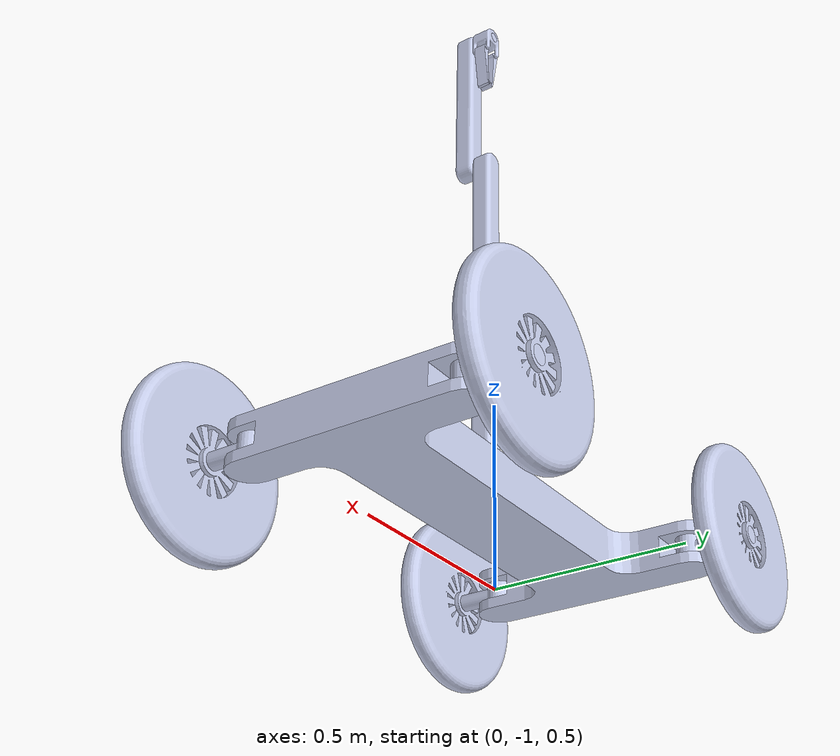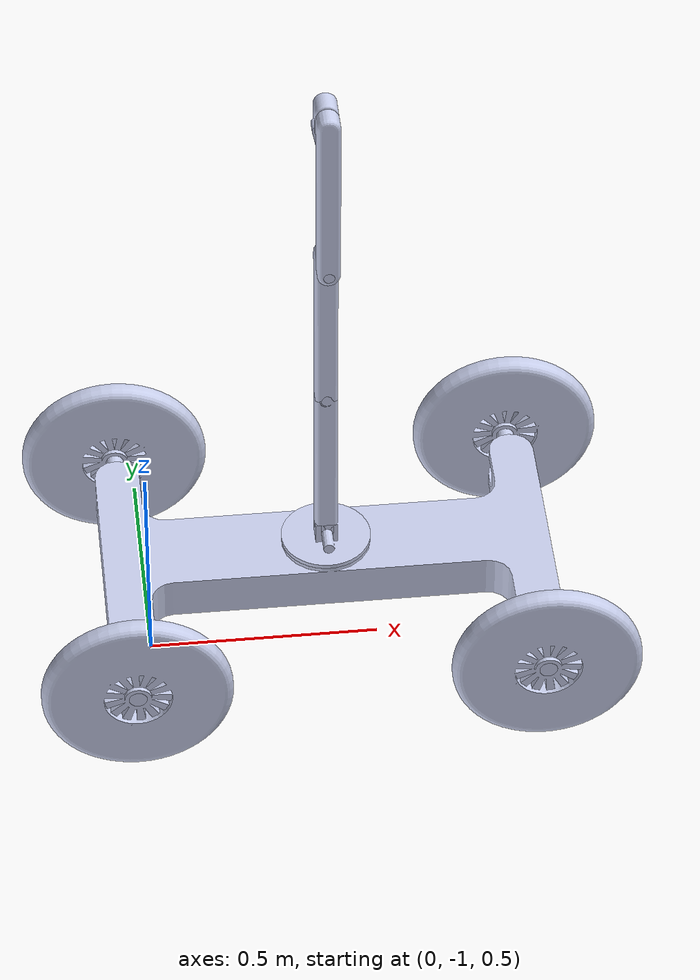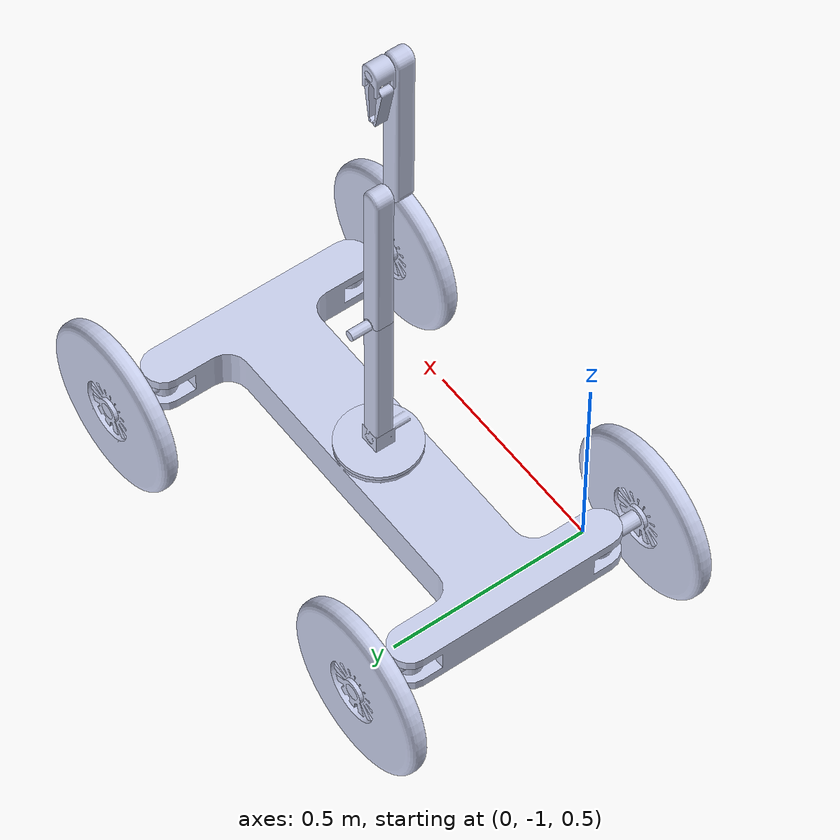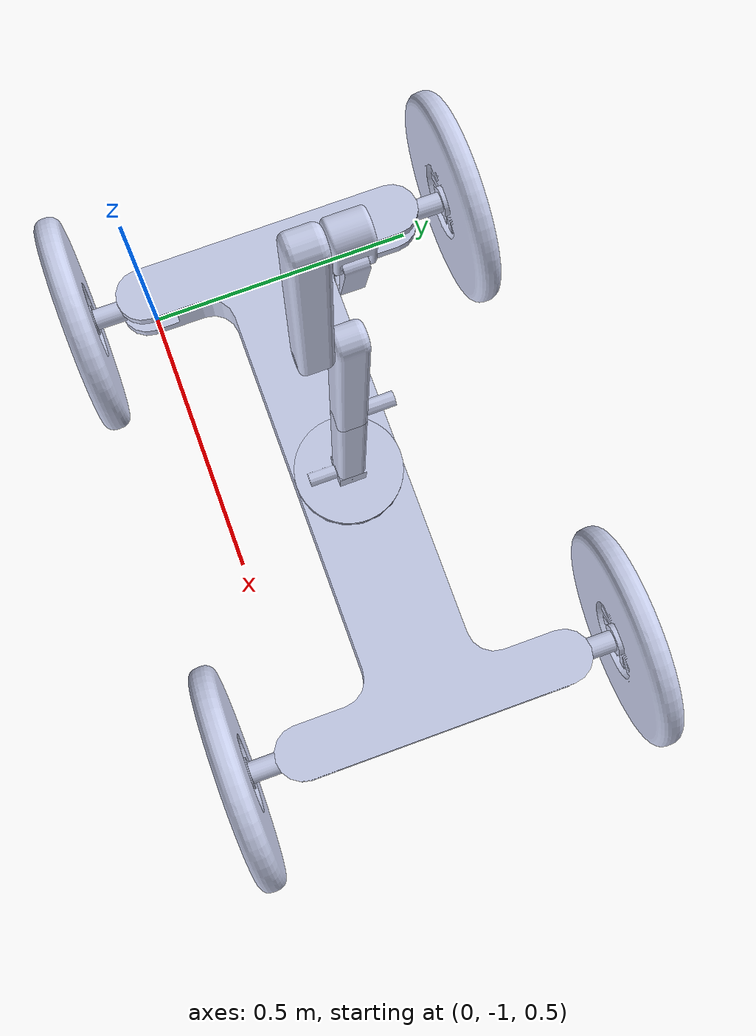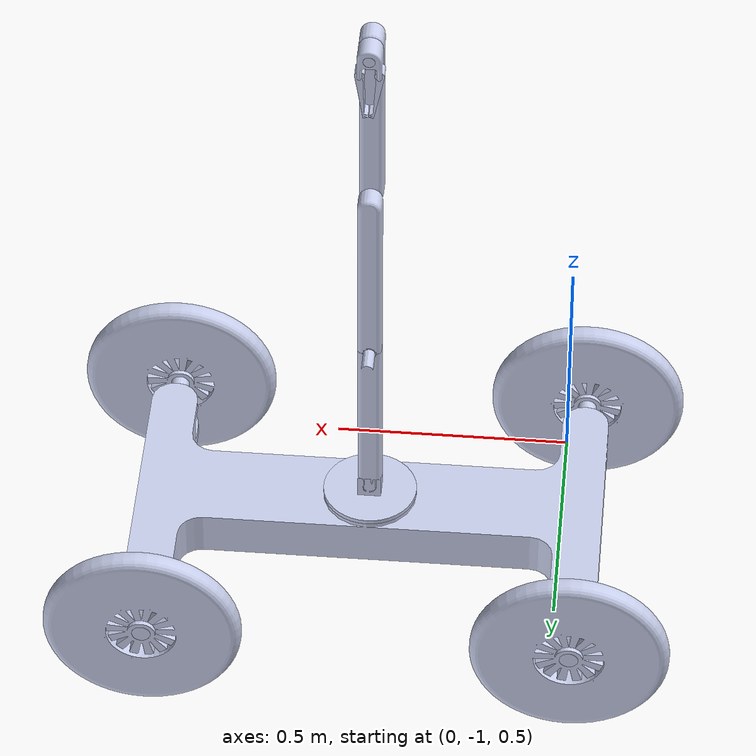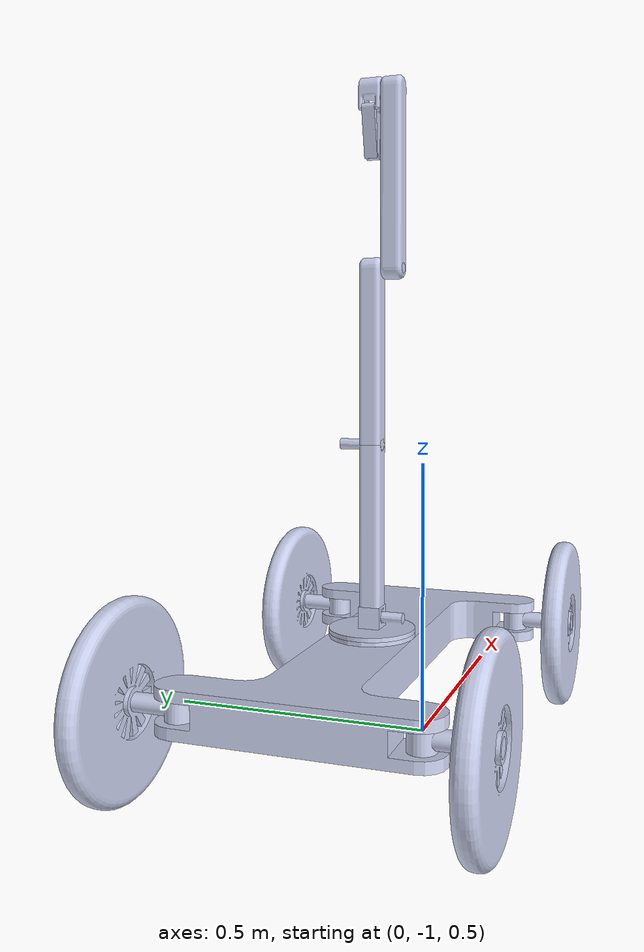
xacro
<?xml version="1.0" ?>
<robot
  name="car" xmlns:xacro="http://ros.org/wiki/xacro">
  <link name="dummy_link"></link>
  <link
    name="base_link">
    <inertial>
      <origin
        xyz="0.410739320383848 -0.760919245062769 0.503217025483666"
        rpy="0 0 0" />
      <mass
        value="26.5654866776462" />
      <inertia
        ixx="0.311711032402344"
        ixy="6.4374503991327E-17"
        ixz="-1.18915697835174E-17"
        iyy="2.95081279665845"
        iyz="-2.01443248286315E-18"
        izz="3.21497060567305" />
    </inertial>
    <visual>
      <origin
        xyz="0 0 0"
        rpy="0 0 0" />
      <geometry>
        <mesh
          filename="package://car/meshes/base_link.STL" />
      </geometry>
      <material
        name="">
        <color
          rgba="0.792156862745098 0.819607843137255 0.933333333333333 1" />
      </material>
    </visual>
    <collision>
      <origin
        xyz="0 0 0"
        rpy="0 0 0" />
      <geometry>
        <mesh
          filename="package://car/meshes/base_link.STL" />
      </geometry>
    </collision>
  </link>
    <joint name="dummy_joint" type="fixed">
    <origin rpy="0 0 0" xyz="0 0 0" />
    <parent link="dummy_link"/>
    <child link="base_link"/>
  </joint>
  <link
    name="front_left_axle_link">
    <inertial>
      <origin
        xyz="0.0605635681645035 0.0250000379534826 1.01927197793117E-08"
        rpy="0 0 0" />
      <mass
        value="0.225126111623142" />
      <inertia
        ixx="6.99511377566151E-05"
        ixy="-1.9388751550408E-10"
        ixz="-2.5215377280019E-10"
        iyy="0.000642301895072359"
        iyz="-2.1138743748584E-10"
        izz="0.000632842018939609" />
    </inertial>
    <visual>
      <origin
        xyz="0 0 0"
        rpy="0 0 0" />
      <geometry>
        <mesh
          filename="package://car/meshes/front_left_axle_link.STL" />
      </geometry>
      <material
        name="">
        <color
          rgba="0.792156862745098 0.819607843137255 0.933333333333333 1" />
      </material>
    </visual>
    <collision>
      <origin
        xyz="0 0 0"
        rpy="0 0 0" />
      <geometry>
        <mesh
          filename="package://car/meshes/front_left_axle_link.STL" />
      </geometry>
    </collision>
  </link>
  <joint
    name="front_left_axle_joint"
    type="revolute">
    <origin
      xyz="0.860739320383848 -0.510919245062769 0.47756660413794"
      rpy="1.5707963267949 0 1.5707963267949" />
    <parent
      link="base_link" />
    <child
      link="front_left_axle_link" />
    <axis
      xyz="0 1 0" />
    <limit
      lower="-0.61"
      upper="0.61"
      effort="100"
      velocity="100" />
  </joint>
  <link
    name="front_left_wheel_link">
    <inertial>
      <origin
        xyz="4.44089209850063E-16 -2.4980018054066E-16 -0.025"
        rpy="0 0 0" />
      <mass
        value="6.21012679962811" />
      <inertia
        ixx="0.0721461700805678"
        ixy="5.20417042793042E-18"
        ixz="4.71601633982946E-19"
        iyy="0.0721461700805678"
        iyz="7.87347296425907E-21"
        izz="0.141888005291817" />
    </inertial>
    <visual>
      <origin
        xyz="0 0 0"
        rpy="0 0 0" />
      <geometry>
        <mesh
          filename="package://car/meshes/front_left_wheel_link.STL" />
      </geometry>
      <material
        name="">
        <color
          rgba="0.792156862745098 0.819607843137255 0.933333333333333 1" />
      </material>
    </visual>
    <collision>
      <origin
        xyz="0 0 0"
        rpy="0 0 0" />
      <geometry>
        <mesh
          filename="package://car/meshes/front_left_wheel_link.STL" />
      </geometry>
    </collision>
  </link>
  <joint
    name="front_left_wheel_joint"
    type="continuous">
    <origin
      xyz="0.0999999999999999 0.0249999999999999 0"
      rpy="-1.5707963267949 -1.28850619485261 1.5707963267949" />
    <parent
      link="front_left_axle_link" />
    <child
      link="front_left_wheel_link" />
    <axis
      xyz="0 0 1" />
    <limit
      effort="100"
      velocity="100" />
  </joint>
  <link
    name="front_right_axle_link">
    <inertial>
      <origin
        xyz="0.0605635681645036 0.0249999620465176 -1.01927197793117E-08"
        rpy="0 0 0" />
      <mass
        value="0.225126111623142" />
      <inertia
        ixx="6.99511377566151E-05"
        ixy="1.93887515879403E-10"
        ixz="2.52153773107898E-10"
        iyy="0.000642301895072357"
        iyz="-2.11387437456505E-10"
        izz="0.000632842018939609" />
    </inertial>
    <visual>
      <origin
        xyz="0 0 0"
        rpy="0 0 0" />
      <geometry>
        <mesh
          filename="package://car/meshes/front_right_axle_link.STL" />
      </geometry>
      <material
        name="">
        <color
          rgba="0.792156862745098 0.819607843137255 0.933333333333333 1" />
      </material>
    </visual>
    <collision>
      <origin
        xyz="0 0 0"
        rpy="0 0 0" />
      <geometry>
        <mesh
          filename="package://car/meshes/front_right_axle_link.STL" />
      </geometry>
    </collision>
  </link>
  <joint
    name="front_right_axle_joint"
    type="revolute">
    <origin
      xyz="0.860739320383848 -1.01091924506277 0.47756660413794"
      rpy="1.5707963267949 0 -1.5707963267949" />
    <parent
      link="base_link" />
    <child
      link="front_right_axle_link" />
    <axis
      xyz="0 1 0" />
    <limit
      lower="-0.61"
      upper="0.61"
      effort="100"
      velocity="100" />
  </joint>
  <link
    name="front_right_wheel_link">
    <inertial>
      <origin
        xyz="0 1.11022302462516E-16 0.0250000000000004"
        rpy="0 0 0" />
      <mass
        value="6.21012679962811" />
      <inertia
        ixx="0.0721461700805678"
        ixy="-8.67361737988404E-18"
        ixz="-2.75436773507226E-18"
        iyy="0.0721461700805677"
        iyz="-5.88430285502726E-18"
        izz="0.141888005291817" />
    </inertial>
    <visual>
      <origin
        xyz="0 0 0"
        rpy="0 0 0" />
      <geometry>
        <mesh
          filename="package://car/meshes/front_right_wheel_link.STL" />
      </geometry>
      <material
        name="">
        <color
          rgba="0.792156862745098 0.819607843137255 0.933333333333333 1" />
      </material>
    </visual>
    <collision>
      <origin
        xyz="0 0 0"
        rpy="0 0 0" />
      <geometry>
        <mesh
          filename="package://car/meshes/front_right_wheel_link.STL" />
      </geometry>
    </collision>
  </link>
  <joint
    name="front_right_wheel_joint"
    type="continuous">
    <origin
      xyz="0.1 0.0249999999999999 0"
      rpy="1.5707963267949 -0.481305016641314 1.5707963267949" />
    <parent
      link="front_right_axle_link" />
    <child
      link="front_right_wheel_link" />
    <axis
      xyz="0 0 1" />
    <limit
      effort="100"
      velocity="100" />
  </joint>
  <link
    name="rear_left_axle_link">
    <inertial>
      <origin
        xyz="0.0605635681645036 0.0250000379534825 1.01927197029839E-08"
        rpy="0 0 0" />
      <mass
        value="0.225126111623143" />
      <inertia
        ixx="6.99511377566153E-05"
        ixy="-1.93887515637222E-10"
        ixz="-2.52153772939904E-10"
        iyy="0.000642301895072359"
        iyz="-2.11387437542156E-10"
        izz="0.00063284201893961" />
    </inertial>
    <visual>
      <origin
        xyz="0 0 0"
        rpy="0 0 0" />
      <geometry>
        <mesh
          filename="package://car/meshes/rear_left_axle_link.STL" />
      </geometry>
      <material
        name="">
        <color
          rgba="0.792156862745098 0.819607843137255 0.933333333333333 1" />
      </material>
    </visual>
    <collision>
      <origin
        xyz="0 0 0"
        rpy="0 0 0" />
      <geometry>
        <mesh
          filename="package://car/meshes/rear_left_axle_link.STL" />
      </geometry>
    </collision>
  </link>
  <joint
    name="rear_left_axle_joint"
    type="fixed">
    <origin
      xyz="-0.039260679616152 -0.510919245062769 0.47756660413794"
      rpy="1.5707963267949 0 1.5707963267949" />
    <parent
      link="base_link" />
    <child
      link="rear_left_axle_link" />
    <axis
      xyz="0 0 0" />
  </joint>
  <link
    name="rear_left_wheel_link">
    <inertial>
      <origin
        xyz="5.55111512312578E-17 -1.11022302462516E-16 -0.0250000000000001"
        rpy="0 0 0" />
      <mass
        value="6.2101267996281" />
      <inertia
        ixx="0.0721461700805676"
        ixy="-5.20417042793042E-18"
        ixz="-4.22428913000519E-19"
        iyy="0.0721461700805676"
        iyz="-2.23213394995521E-19"
        izz="0.141888005291817" />
    </inertial>
    <visual>
      <origin
        xyz="0 0 0"
        rpy="0 0 0" />
      <geometry>
        <mesh
          filename="package://car/meshes/rear_left_wheel_link.STL" />
      </geometry>
      <material
        name="">
        <color
          rgba="0.792156862745098 0.819607843137255 0.933333333333333 1" />
      </material>
    </visual>
    <collision>
      <origin
        xyz="0 0 0"
        rpy="0 0 0" />
      <geometry>
        <mesh
          filename="package://car/meshes/rear_left_wheel_link.STL" />
      </geometry>
    </collision>
  </link>
  <joint
    name="rear_left_wheel_joint"
    type="continuous">
    <origin
      xyz="0.0999999999999999 0.025 0"
      rpy="1.5707963267949 -1.07637270831233 -1.5707963267949" />
    <parent
      link="rear_left_axle_link" />
    <child
      link="rear_left_wheel_link" />
    <axis
      xyz="0 0 1" />
    <limit
      effort="100"
      velocity="100" />
  </joint>
  <link
    name="rear_right_axle_link">
    <inertial>
      <origin
        xyz="0.0605635681645034 -0.0250000379534825 -1.01927196891061E-08"
        rpy="0 0 0" />
      <mass
        value="0.225126111623142" />
      <inertia
        ixx="6.99511377566151E-05"
        ixy="1.93887515768374E-10"
        ixz="2.52153772834354E-10"
        iyy="0.000642301895072358"
        iyz="-2.11387437498605E-10"
        izz="0.000632842018939609" />
    </inertial>
    <visual>
      <origin
        xyz="0 0 0"
        rpy="0 0 0" />
      <geometry>
        <mesh
          filename="package://car/meshes/rear_right_axle_link.STL" />
      </geometry>
      <material
        name="">
        <color
          rgba="0.792156862745098 0.819607843137255 0.933333333333333 1" />
      </material>
    </visual>
    <collision>
      <origin
        xyz="0 0 0"
        rpy="0 0 0" />
      <geometry>
        <mesh
          filename="package://car/meshes/rear_right_axle_link.STL" />
      </geometry>
    </collision>
  </link>
  <joint
    name="rear_right_axle_joint"
    type="fixed">
    <origin
      xyz="-0.039260679616152 -1.01091924506277 0.47756660413794"
      rpy="-1.5707963267949 0 -1.5707963267949" />
    <parent
      link="base_link" />
    <child
      link="rear_right_axle_link" />
    <axis
      xyz="0 0 0" />
  </joint>
  <link
    name="rear_right_wheel_link">
    <inertial>
      <origin
        xyz="0 -1.11022302462516E-16 0.0250000000000001"
        rpy="0 0 0" />
      <mass
        value="6.21012679962811" />
      <inertia
        ixx="0.0721461700805678"
        ixy="-6.93889390390723E-18"
        ixz="-9.60477009199774E-18"
        iyy="0.0721461700805677"
        iyz="2.22704532439284E-18"
        izz="0.141888005291817" />
    </inertial>
    <visual>
      <origin
        xyz="0 0 0"
        rpy="0 0 0" />
      <geometry>
        <mesh
          filename="package://car/meshes/rear_right_wheel_link.STL" />
      </geometry>
      <material
        name="">
        <color
          rgba="0.792156862745098 0.819607843137255 0.933333333333333 1" />
      </material>
    </visual>
    <collision>
      <origin
        xyz="0 0 0"
        rpy="0 0 0" />
      <geometry>
        <mesh
          filename="package://car/meshes/rear_right_wheel_link.STL" />
      </geometry>
    </collision>
  </link>
  <joint
    name="rear_right_wheel_joint"
    type="continuous">
    <origin
      xyz="0.1 -0.0249999999999998 0"
      rpy="1.5707963267949 1.26619863601371 1.5707963267949" />
    <parent
      link="rear_right_axle_link" />
    <child
      link="rear_right_wheel_link" />
    <axis
      xyz="0 0 1" />
    <limit
      effort="100"
      velocity="100" />
  </joint>
  <link
    name="base_rotation_link">
    <inertial>
      <origin
        xyz="5.55111512312578E-17 0.0146749669182017 0.00264648868252582"
        rpy="0 0 0" />
      <mass
        value="0.46370295796515" />
      <inertia
        ixx="0.000995467414155941"
        ixy="-6.08459656610014E-21"
        ixz="-3.1527175225805E-22"
        iyy="0.00168706316869356"
        iyz="-2.4942568208495E-05"
        izz="0.000933201381575472" />
    </inertial>
    <visual>
      <origin
        xyz="0 0 0"
        rpy="0 0 0" />
      <geometry>
        <mesh
          filename="package://car/meshes/base_rotation_link.STL" />
      </geometry>
      <material
        name="">
        <color
          rgba="0.792156862745098 0.819607843137255 0.933333333333333 1" />
      </material>
    </visual>
    <collision>
      <origin
        xyz="0 0 0"
        rpy="0 0 0" />
      <geometry>
        <mesh
          filename="package://car/meshes/base_rotation_link.STL" />
      </geometry>
    </collision>
  </link>
  <joint
    name="base_rotation_joint"
    type="revolute">
    <origin
      xyz="0.410739320383848 -0.760919245062769 0.56256660413794"
      rpy="1.5707963267949 0 0" />
    <parent
      link="base_link" />
    <child
      link="base_rotation_link" />
    <axis
      xyz="0 1 0" />
    <limit
      lower="-3.14"
      upper="3.14"
      effort="100"
      velocity="100" />
  </joint>
  <link
    name="leg1_2_link">
    <inertial>
      <origin
        xyz="0.209282308677025 5.55111512312578E-17 -0.0488397578259873"
        rpy="0 0 0" />
      <mass
        value="1.05769696861129" />
      <inertia
        ixx="0.000471758035513895"
        ixy="-2.95824770501824E-18"
        ixz="-0.000234045819519474"
        iyy="0.0171278880451076"
        iyz="-2.87058378137343E-19"
        izz="0.0170643960635634" />
    </inertial>
    <visual>
      <origin
        xyz="0 0 0"
        rpy="0 0 0" />
      <geometry>
        <mesh
          filename="package://car/meshes/leg1_2_link.STL" />
      </geometry>
      <material
        name="">
        <color
          rgba="0.792156862745098 0.819607843137255 0.933333333333333 1" />
      </material>
    </visual>
    <collision>
      <origin
        xyz="0 0 0"
        rpy="0 0 0" />
      <geometry>
        <mesh
          filename="package://car/meshes/leg1_2_link.STL" />
      </geometry>
    </collision>
  </link>
  <joint
    name="leg1_2_joint"
    type="revolute">
    <origin
      xyz="0 0.0350000000000001 0"
      rpy="3.14159265358979 0 1.5707963267949" />
    <parent
      link="base_rotation_link" />
    <child
      link="leg1_2_link" />
    <axis
      xyz="0 0 1" />
    <limit
      lower="-3.14"
      upper="3.14"
      effort="100"
      velocity="100" />
  </joint>
  <link
    name="leg2_3_link">
    <inertial>
      <origin
        xyz="0.209282308677025 -1.11022302462516E-16 0.00116024217401323"
        rpy="0 0 0" />
      <mass
        value="1.0576969686113" />
      <inertia
        ixx="0.000471758035513895"
        ixy="4.42517122837199E-18"
        ixz="-0.000234045819519477"
        iyy="0.0171278880451077"
        iyz="-3.02590594772103E-21"
        izz="0.0170643960635635" />
    </inertial>
    <visual>
      <origin
        xyz="0 0 0"
        rpy="0 0 0" />
      <geometry>
        <mesh
          filename="package://car/meshes/leg2_3_link.STL" />
      </geometry>
      <material
        name="">
        <color
          rgba="0.792156862745098 0.819607843137255 0.933333333333333 1" />
      </material>
    </visual>
    <collision>
      <origin
        xyz="0 0 0"
        rpy="0 0 0" />
      <geometry>
        <mesh
          filename="package://car/meshes/leg2_3_link.STL" />
      </geometry>
    </collision>
  </link>
  <joint
    name="leg2_3_joint"
    type="revolute">
    <origin
      xyz="0.399999999999999 0 0"
      rpy="3.14159265358979 0 0" />
    <parent
      link="leg1_2_link" />
    <child
      link="leg2_3_link" />
    <axis
      xyz="0 0 1" />
    <limit
      lower="-3.14"
      upper="3.14"
      effort="100"
      velocity="100" />
  </joint>
  <link
    name="leg3_4_link">
    <inertial>
      <origin
        xyz="0.209282308677025 5.55111512312578E-17 -0.0488397578259873"
        rpy="0 0 0" />
      <mass
        value="1.0576969686113" />
      <inertia
        ixx="0.000471758035513896"
        ixy="-3.2984972653583E-18"
        ixz="-0.000234045819519485"
        iyy="0.0171278880451077"
        iyz="2.34188666232241E-20"
        izz="0.0170643960635635" />
    </inertial>
    <visual>
      <origin
        xyz="0 0 0"
        rpy="0 0 0" />
      <geometry>
        <mesh
          filename="package://car/meshes/leg3_4_link.STL" />
      </geometry>
      <material
        name="">
        <color
          rgba="0.792156862745098 0.819607843137255 0.933333333333333 1" />
      </material>
    </visual>
    <collision>
      <origin
        xyz="0 0 0"
        rpy="0 0 0" />
      <geometry>
        <mesh
          filename="package://car/meshes/leg3_4_link.STL" />
      </geometry>
    </collision>
  </link>
  <joint
    name="leg3_4_joint"
    type="revolute">
    <origin
      xyz="0.399999999999999 0 0"
      rpy="3.14159265358979 0 0" />
    <parent
      link="leg2_3_link" />
    <child
      link="leg3_4_link" />
    <axis
      xyz="0 0 1" />
    <limit
      lower="-3.14"
      upper="3.14"
      effort="100"
      velocity="100" />
  </joint>
  <link
    name="end_effector_link">
    <inertial>
      <origin
        xyz="-1.3894564165895E-08 1.70440034308328E-08 -0.0059484514282595"
        rpy="0 0 0" />
      <mass
        value="0.087095638195956" />
      <inertia
        ixx="5.36301539858517E-05"
        ixy="-7.68677606846246E-11"
        ixz="-3.80065992602011E-11"
        iyy="5.01858736172661E-05"
        iyz="2.48701289287865E-11"
        izz="4.10874831458465E-05" />
    </inertial>
    <visual>
      <origin
        xyz="0 0 0"
        rpy="0 0 0" />
      <geometry>
        <mesh
          filename="package://car/meshes/end_effector_link.STL" />
      </geometry>
      <material
        name="">
        <color
          rgba="0.792156862745098 0.819607843137255 0.933333333333333 1" />
      </material>
    </visual>
    <collision>
      <origin
        xyz="0 0 0"
        rpy="0 0 0" />
      <geometry>
        <mesh
          filename="package://car/meshes/end_effector_link.STL" />
      </geometry>
    </collision>
  </link>
  <joint
    name="end_effector_joint"
    type="revolute">
    <origin
      xyz="0.4 0 0"
      rpy="3.1416 -1.5708 0" />
    <parent
      link="leg3_4_link" />
    <child
      link="end_effector_link" />
    <axis
      xyz="1 0 0" />
    <limit
      lower="-3.14"
      upper="3.14"
      effort="100"
      velocity="100" />
  </joint>
  <link
    name="claw_top_link">
    <inertial>
      <origin
        xyz="-0.0396232269062649 0.000702572899426102 4.44089209850063E-16"
        rpy="0 0 0" />
      <mass
        value="0.0354526854795692" />
      <inertia
        ixx="3.21099761085776E-06"
        ixy="-4.82379990601232E-07"
        ixz="-1.44129514091217E-22"
        iyy="3.98194150178254E-05"
        iyz="-1.30793872042702E-22"
        izz="3.77125098067478E-05" />
    </inertial>
    <visual>
      <origin
        xyz="0 0 0"
        rpy="0 0 0" />
      <geometry>
        <mesh
          filename="package://car/meshes/claw_top_link.STL" />
      </geometry>
      <material
        name="">
        <color
          rgba="0.792156862745098 0.819607843137255 0.933333333333333 1" />
      </material>
    </visual>
    <collision>
      <origin
        xyz="0 0 0"
        rpy="0 0 0" />
      <geometry>
        <mesh
          filename="package://car/meshes/claw_top_link.STL" />
      </geometry>
    </collision>
  </link>
  <joint
    name="claw_top_joint"
    type="revolute">
    <origin
      xyz="0 0.02 -0.045"
      rpy="-1.5708 -1.4538 1.5708" />
    <parent
      link="end_effector_link" />
    <child
      link="claw_top_link" />
    <axis
      xyz="0 0 1" />
    <limit
      lower="-1.57"
      upper="0"
      effort="100"
      velocity="100" />
  </joint>
  <link
    name="claw_bottom_link">
    <inertial>
      <origin
        xyz="-0.0396232269062644 0.000702572899425769 -4.44089209850063E-16"
        rpy="0 0 0" />
      <mass
        value="0.0354526854795692" />
      <inertia
        ixx="3.21099761085776E-06"
        ixy="-4.82379990601536E-07"
        ixz="1.04292629673908E-20"
        iyy="3.98194150178253E-05"
        iyz="-6.09356122582118E-22"
        izz="3.77125098067477E-05" />
    </inertial>
    <visual>
      <origin
        xyz="0 0 0"
        rpy="0 0 0" />
      <geometry>
        <mesh
          filename="package://car/meshes/claw_bottom_link.STL" />
      </geometry>
      <material
        name="">
        <color
          rgba="0.792156862745098 0.819607843137255 0.933333333333333 1" />
      </material>
    </visual>
    <collision>
      <origin
        xyz="0 0 0"
        rpy="0 0 0" />
      <geometry>
        <mesh
          filename="package://car/meshes/claw_bottom_link.STL" />
      </geometry>
    </collision>
  </link>
  <joint
    name="claw_bottom_joint"
    type="revolute">
    <origin
      xyz="0 -0.02 -0.045"
      rpy="-1.5708 -1.499 -1.5708" />
    <parent
      link="end_effector_link" />
    <child
      link="claw_bottom_link" />
    <axis
      xyz="0 0 1" />
    <limit
      lower="-1.57"
      upper="0"
      effort="100"
      velocity="100" />
  </joint>

 <ros2_control name="GazeboSystem" type="system">
 <hardware>
     <plugin>gazebo_ros2_control/GazeboSystem</plugin>
 </hardware>

# Velocity Controllers

 <joint name="rear_left_wheel_joint">
     <command_interface name="velocity">
         <param name="min">-1000.0</param>
         <param name="max">1000.0</param>
     </command_interface>
     <state_interface name="position"/>
     <state_interface name="velocity"/>
 </joint>
 <joint name="rear_right_wheel_joint">
     <command_interface name="velocity">
         <param name="min">-1000.0</param>
         <param name="max">1000.0</param>
     </command_interface>
     <state_interface name="position"/>
     <state_interface name="velocity"/>
 </joint>
 <joint name="front_left_wheel_joint">
     <command_interface name="velocity">
         <param name="min">-1000.0</param>
         <param name="max">1000.0</param>
     </command_interface>
     <state_interface name="position"/>
     <state_interface name="velocity"/>
 </joint>
 <joint name="front_right_wheel_joint">
     <command_interface name="velocity">
         <param name="min">-1000.0</param>
         <param name="max">1000.0</param>
     </command_interface>
     <state_interface name="position"/>
     <state_interface name="velocity"/>
 </joint>
 <!-- block -->
 <!-- block -->

# Position Controller
 <joint name="front_left_axle_joint">
     <command_interface name="position">
         <param name="min">-3.14</param>
         <param name="max">3.14</param>
     </command_interface>
     <state_interface name="position"/>
     <state_interface name="velocity"/>
 </joint>
 <joint name="front_right_axle_joint">
     <command_interface name="position">
         <param name="min">-3.14</param>
         <param name="max">3.14</param>
     </command_interface>
     <state_interface name="position"/>
     <state_interface name="velocity"/>
 </joint>

<!-- Block for position stuff -->
# Maniplator Controller
 <joint name="base_rotation_joint">
     <command_interface name="position">
         <param name="min">-6.28</param>
         <param name="max">6.28</param>
     </command_interface>
     <state_interface name="position"/>
     <state_interface name="velocity"/>
 </joint>
 <joint name="leg1_2_joint">
     <command_interface name="position">
         <param name="min">-6.28</param>
         <param name="max">6.28</param>
     </command_interface>
     <state_interface name="position"/>
     <state_interface name="velocity"/>
 </joint>
 <joint name="leg2_3_joint">
     <command_interface name="position">
         <param name="min">-6.28</param>
         <param name="max">6.28</param>
     </command_interface>
     <state_interface name="position"/>
     <state_interface name="velocity"/>
 </joint>
 <joint name="leg3_4_joint">
     <command_interface name="position">
         <param name="min">-6.28</param>
         <param name="max">6.28</param>
     </command_interface>
     <state_interface name="position"/>
     <state_interface name="velocity"/>
 </joint>
 <joint name="end_effector_joint">
     <command_interface name="position">
         <param name="min">-6.28</param>
         <param name="max">6.28</param>
     </command_interface>
     <state_interface name="position"/>
     <state_interface name="velocity"/>
 </joint>
 <joint name="claw_top_joint">
     <command_interface name="position">
         <param name="min">-6.28</param>
         <param name="max">6.28</param>
     </command_interface>
     <state_interface name="position"/>
     <state_interface name="velocity"/>
 </joint>
 <joint name="claw_bottom_joint">
     <command_interface name="position">
         <param name="min">-6.28</param>
         <param name="max">6.28</param>
     </command_interface>
     <state_interface name="position"/>
     <state_interface name="velocity"/>
 </joint>
<!-- /Block for position stuff -->

 </ros2_control>
 <gazebo>
    <plugin filename="libgazebo_ros2_control.so" name="gazebo_ros2_control">
        <parameters>$(find car)/config/control.yaml</parameters>
    </plugin>
</gazebo>
</robot>
